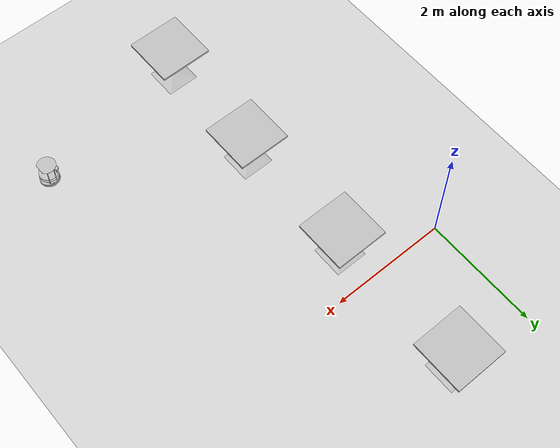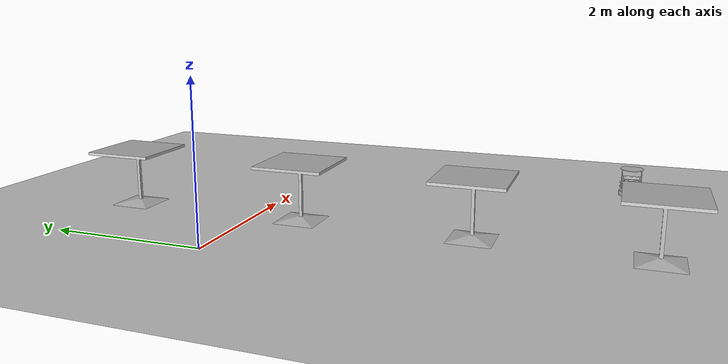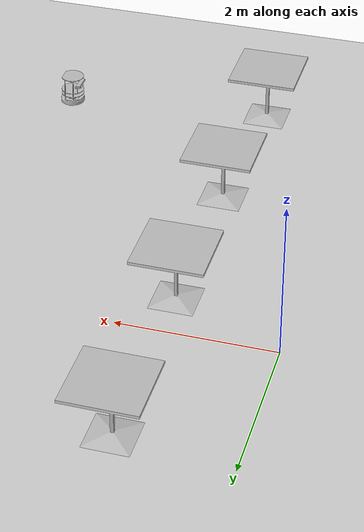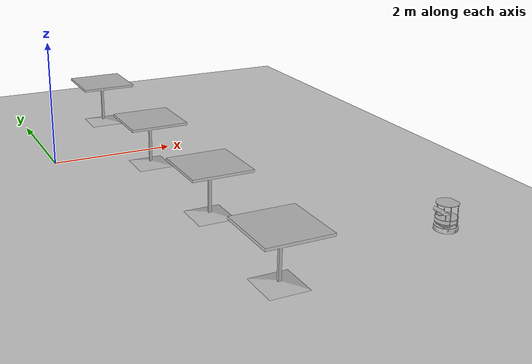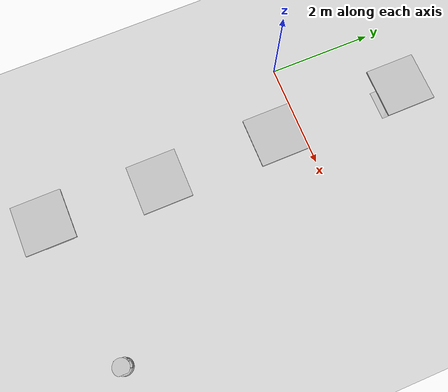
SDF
<sdf version="1.7">
 <world name="default">
  <light name="sun" type="directional">
   <pose>0 0 10 0 -0 0</pose>
   <diffuse>0.8 0.8 0.8 1</diffuse>
   <specular>0.2 0.2 0.2 1</specular>
   <attenuation>
    <range>1000</range>
    <constant>0.9</constant>
    <linear>0.01</linear>
    <quadratic>0.001</quadratic>
   </attenuation>
   <direction>-0.5 0.1 -0.9</direction>
   <spot><inner_angle>0</inner_angle><outer_angle>0</outer_angle><falloff>0</falloff></spot>
  </light>
  <model name="ground_plane">
   <static>1</static>
   <link name="link">
    <collision name="collision">
     <geometry><plane><normal>0 0 1</normal><size>100 100</size></plane></geometry>
     <surface>
      <contact><collide_bitmask>65535</collide_bitmask></contact>
      <friction><ode><mu>100</mu><mu2>50</mu2></ode></friction>
     </surface>
    </collision>
    <visual name="visual">
     <cast_shadows>0</cast_shadows>
     <geometry><plane><normal>0 0 1</normal><size>100 100</size></plane></geometry>
     <material>
      <script><uri>file://media/materials/scripts/gazebo.material</uri><name>Gazebo/Grey</name></script>
     </material>
    </visual>
   </link>
  </model>
  <gravity>0 0 -9.8</gravity>
  <magnetic_field>6e-06 2.3e-05 -4.2e-05</magnetic_field>
  <atmosphere type="adiabatic"/>
  <physics type="ode">
   <max_step_size>0.001</max_step_size>
   <real_time_factor>1</real_time_factor>
   <real_time_update_rate>1000</real_time_update_rate>
  </physics>
  <scene><ambient>0.4 0.4 0.4 1</ambient><background>0.7 0.7 0.7 1</background><shadows>1</shadows></scene>
  <audio><device>default</device></audio>
  <spherical_coordinates>
   <surface_model>EARTH_WGS84</surface_model>
   <latitude_deg>0</latitude_deg>
   <longitude_deg>0</longitude_deg>
   <elevation>0</elevation>
   <heading_deg>0</heading_deg>
  </spherical_coordinates>
  <model name="cafe_table">
   <static>1</static>
   <link name="link">
    <collision name="surface">
     <pose>0 0 0.755 0 -0 0</pose>
     <geometry><box><size>0.913 0.913 0.04</size></box></geometry>
    </collision>
    <collision name="column">
     <pose>0 0 0.37 0 -0 0</pose>
     <geometry><box><size>0.042 0.042 0.74</size></box></geometry>
    </collision>
    <collision name="base">
     <pose>0 0 0.02 0 -0 0</pose>
     <geometry><box><size>0.56 0.56 0.04</size></box></geometry>
    </collision>
    <visual name="visual">
     <geometry><mesh><uri>model://cafe_table/meshes/cafe_table.dae</uri></mesh></geometry>
    </visual>
   </link>
   <pose>1.35328 -4.99927 0 0 -0 0</pose>
  </model>
  <model name="cafe_table_0">
   <static>1</static>
   <link name="link">
    <collision name="surface">
     <pose>0 0 0.755 0 -0 0</pose>
     <geometry><box><size>0.913 0.913 0.04</size></box></geometry>
    </collision>
    <collision name="column">
     <pose>0 0 0.37 0 -0 0</pose>
     <geometry><box><size>0.042 0.042 0.74</size></box></geometry>
    </collision>
    <collision name="base">
     <pose>0 0 0.02 0 -0 0</pose>
     <geometry><box><size>0.56 0.56 0.04</size></box></geometry>
    </collision>
    <visual name="visual">
     <geometry><mesh><uri>model://cafe_table/meshes/cafe_table.dae</uri></mesh></geometry>
    </visual>
   </link>
   <pose>1.43722 -2.88927 0 0 -0 0</pose>
  </model>
  <model name="cafe_table_1">
   <static>1</static>
   <link name="link">
    <collision name="surface">
     <pose>0 0 0.755 0 -0 0</pose>
     <geometry><box><size>0.913 0.913 0.04</size></box></geometry>
    </collision>
    <collision name="column">
     <pose>0 0 0.37 0 -0 0</pose>
     <geometry><box><size>0.042 0.042 0.74</size></box></geometry>
    </collision>
    <collision name="base">
     <pose>0 0 0.02 0 -0 0</pose>
     <geometry><box><size>0.56 0.56 0.04</size></box></geometry>
    </collision>
    <visual name="visual">
     <geometry><mesh><uri>model://cafe_table/meshes/cafe_table.dae</uri></mesh></geometry>
    </visual>
   </link>
   <pose>1.42368 -0.645604 0 0 -0 0</pose>
  </model>
  <model name="cafe_table_2">
   <static>1</static>
   <link name="link">
    <collision name="surface">
     <pose>0 0 0.755 0 -0 0</pose>
     <geometry><box><size>0.913 0.913 0.04</size></box></geometry>
    </collision>
    <collision name="column">
     <pose>0 0 0.37 0 -0 0</pose>
     <geometry><box><size>0.042 0.042 0.74</size></box></geometry>
    </collision>
    <collision name="base">
     <pose>0 0 0.02 0 -0 0</pose>
     <geometry><box><size>0.56 0.56 0.04</size></box></geometry>
    </collision>
    <visual name="visual">
     <geometry><mesh><uri>model://cafe_table/meshes/cafe_table.dae</uri></mesh></geometry>
    </visual>
   </link>
   <pose>1.41888 1.82906 0 0 -0 0</pose>
  </model>
  <model name="turtlebot">
   <link name="rack">
    <inertial>
     <pose>0.001453 -0.000453 0.029787 0 -0 0</pose>
     <inertia>
      <ixx>0.05864</ixx>
      <ixy>0.000124</ixy>
      <ixz>0.000615</ixz>
      <iyy>0.058786</iyy>
      <iyz>1.4e-05</iyz>
      <izz>1.53244</izz>
     </inertia>
     <mass>2.234</mass>
    </inertial>
    <collision name="plate_0_collision">
     <pose>-0.04334 0 0.084757 0 -0 0</pose>
     <geometry><box><size>0.233502 0.314845 0.006401</size></box></geometry>
    </collision>
    <visual name="plate_0_visual">
     <pose>-0.04334 0 0.084757 0 -0 0</pose>
     <geometry><mesh><uri>model://turtlebot/meshes/plate_0_logo.dae</uri></mesh></geometry>
    </visual>
    <collision name="plate_1_collision">
     <pose>-0.00266 0 0.141907 0 -0 0</pose>
     <geometry><box><size>0.314856 0.314856 0.006401</size></box></geometry>
    </collision>
    <visual name="plate_1_visual">
     <pose>-0.00266 0 0.141907 0 -0 0</pose>
     <geometry><mesh><uri>model://turtlebot/meshes/plate_1_logo.dae</uri></mesh></geometry>
    </visual>
    <collision name="plate_2_collision">
     <pose>-0.00266 0 0.199108 0 -0 0</pose>
     <geometry><box><size>0.314856 0.314856 0.006401</size></box></geometry>
    </collision>
    <visual name="plate_2_visual">
     <pose>-0.00266 0 0.199108 0 -0 0</pose>
     <geometry><mesh><uri>model://turtlebot/meshes/plate_1_logo.dae</uri></mesh></geometry>
    </visual>
    <collision name="plate_3_collision">
     <pose>-0.01582 0 0.405457 0 -0 0</pose>
     <geometry><box><size>0.288 0.315 0.006401</size></box></geometry>
    </collision>
    <visual name="plate_3_visual">
     <pose>-0.01582 0 0.405457 0 -0 0</pose>
     <geometry><mesh><uri>model://turtlebot/meshes/plate_2_logo.dae</uri></mesh></geometry>
    </visual>
    <collision name="spacer_0_collision">
     <pose>-0.00254 0.111468 0.079992 0 -0 0</pose>
     <geometry><cylinder><radius>0.0127</radius><length>0.003175</length></cylinder></geometry>
    </collision>
    <visual name="spacer_0_visual">
     <pose>-0.00254 0.111468 0.079992 0 -0 0</pose>
     <geometry><mesh><uri>model://turtlebot/meshes/68-02403-125_Spacer.dae</uri></mesh></geometry>
    </visual>
    <collision name="spacer_1_collision">
     <pose>-0.00254 -0.111468 0.079992 0 -0 0</pose>
     <geometry><cylinder><radius>0.0127</radius><length>0.003175</length></cylinder></geometry>
    </collision>
    <visual name="spacer_1_visual">
     <pose>-0.00254 -0.111468 0.079992 0 -0 0</pose>
     <geometry><mesh><uri>model://turtlebot/meshes/68-02403-125_Spacer.dae</uri></mesh></geometry>
    </visual>
    <collision name="spacer_2_collision">
     <pose>-0.07239 -0.111468 0.079992 0 -0 0</pose>
     <geometry><cylinder><radius>0.0127</radius><length>0.003175</length></cylinder></geometry>
    </collision>
    <visual name="spacer_2_visual">
     <pose>-0.07239 -0.111468 0.079992 0 -0 0</pose>
     <geometry><mesh><uri>model://turtlebot/meshes/68-02403-125_Spacer.dae</uri></mesh></geometry>
    </visual>
    <collision name="spacer_3_collision">
     <pose>-0.07239 0.111468 0.079992 0 -0 0</pose>
     <geometry><cylinder><radius>0.0127</radius><length>0.003175</length></cylinder></geometry>
    </collision>
    <visual name="spacer_3_visual">
     <pose>-0.07239 0.111468 0.079992 0 -0 0</pose>
     <geometry><mesh><uri>model://turtlebot/meshes/68-02403-125_Spacer.dae</uri></mesh></geometry>
    </visual>
    <collision name="standoff_2in_0_collision">
     <pose>0.06764 0.13142 0.08798 0 -0 0</pose>
     <geometry><cylinder><radius>0.0381</radius><length>0.0635</length></cylinder></geometry>
    </collision>
    <visual name="standoff_2in_0_visual">
     <pose>0.06764 0.13142 0.08798 0 -0 0</pose>
     <geometry>
      <mesh><uri>model://turtlebot/meshes/68-04552-2000-RA_Turtlebot_M-F_Standoff.dae</uri></mesh>
     </geometry>
    </visual>
    <collision name="standoff_2in_1_collision">
     <pose>0.06764 -0.13142 0.08798 0 -0 0</pose>
     <geometry><cylinder><radius>0.0381</radius><length>0.0635</length></cylinder></geometry>
    </collision>
    <visual name="standoff_2in_1_visual">
     <pose>0.06764 -0.13142 0.08798 0 -0 0</pose>
     <geometry>
      <mesh><uri>model://turtlebot/meshes/68-04552-2000-RA_Turtlebot_M-F_Standoff.dae</uri></mesh>
     </geometry>
    </visual>
    <collision name="standoff_2in_2_collision">
     <pose>-0.052832 -0.13142 0.08798 0 -0 0</pose>
     <geometry><cylinder><radius>0.0381</radius><length>0.0635</length></cylinder></geometry>
    </collision>
    <visual name="standoff_2in_2_visual">
     <pose>-0.052832 -0.13142 0.08798 0 -0 0</pose>
     <geometry>
      <mesh><uri>model://turtlebot/meshes/68-04552-2000-RA_Turtlebot_M-F_Standoff.dae</uri></mesh>
     </geometry>
    </visual>
    <collision name="standoff_2in_3_collision">
     <pose>-0.052832 0.13142 0.08798 0 -0 0</pose>
     <geometry><cylinder><radius>0.0381</radius><length>0.0635</length></cylinder></geometry>
    </collision>
    <visual name="standoff_2in_3_visual">
     <pose>-0.052832 0.13142 0.08798 0 -0 0</pose>
     <geometry>
      <mesh><uri>model://turtlebot/meshes/68-04552-2000-RA_Turtlebot_M-F_Standoff.dae</uri></mesh>
     </geometry>
    </visual>
    <collision name="standoff_2in_4_collision">
     <pose>0.06764 0.13142 0.14513 0 -0 0</pose>
     <geometry><cylinder><radius>0.0381</radius><length>0.0635</length></cylinder></geometry>
    </collision>
    <visual name="standoff_2in_4_visual">
     <pose>0.06764 0.13142 0.14513 0 -0 0</pose>
     <geometry>
      <mesh><uri>model://turtlebot/meshes/68-04552-2000-RA_Turtlebot_M-F_Standoff.dae</uri></mesh>
     </geometry>
    </visual>
    <collision name="standoff_2in_5_collision">
     <pose>0.06764 -0.13142 0.14513 0 -0 0</pose>
     <geometry><cylinder><radius>0.0381</radius><length>0.0635</length></cylinder></geometry>
    </collision>
    <visual name="standoff_2in_5_visual">
     <pose>0.06764 -0.13142 0.14513 0 -0 0</pose>
     <geometry>
      <mesh><uri>model://turtlebot/meshes/68-04552-2000-RA_Turtlebot_M-F_Standoff.dae</uri></mesh>
     </geometry>
    </visual>
    <collision name="standoff_2in_6_collision">
     <pose>-0.052832 -0.13142 0.14513 0 -0 0</pose>
     <geometry><cylinder><radius>0.0381</radius><length>0.0635</length></cylinder></geometry>
    </collision>
    <visual name="standoff_2in_6_visual">
     <pose>-0.052832 -0.13142 0.14513 0 -0 0</pose>
     <geometry>
      <mesh><uri>model://turtlebot/meshes/68-04552-2000-RA_Turtlebot_M-F_Standoff.dae</uri></mesh>
     </geometry>
    </visual>
    <collision name="standoff_2in_7_collision">
     <pose>-0.052832 0.13142 0.14513 0 -0 0</pose>
     <geometry><cylinder><radius>0.0381</radius><length>0.0635</length></cylinder></geometry>
    </collision>
    <visual name="standoff_2in_7_visual">
     <pose>-0.052832 0.13142 0.14513 0 -0 0</pose>
     <geometry>
      <mesh><uri>model://turtlebot/meshes/68-04552-2000-RA_Turtlebot_M-F_Standoff.dae</uri></mesh>
     </geometry>
    </visual>
    <collision name="standoff_8in_0_collision">
     <pose>0.06764 0.13142 0.20228 0 -0 0</pose>
     <geometry><cylinder><radius>0.011113</radius><length>0.2032</length></cylinder></geometry>
    </collision>
    <visual name="standoff_8in_0_visual">
     <pose>0.06764 0.13142 0.20228 0 -0 0</pose>
     <geometry>
      <mesh><uri>model://turtlebot/meshes/68-02421-8000-RA_Turtlebot_F-F_Standoff.dae</uri></mesh>
     </geometry>
    </visual>
    <collision name="standoff_8in_1_collision">
     <pose>0.06764 -0.13142 0.20228 0 -0 0</pose>
     <geometry><cylinder><radius>0.011113</radius><length>0.2032</length></cylinder></geometry>
    </collision>
    <visual name="standoff_8in_1_visual">
     <pose>0.06764 -0.13142 0.20228 0 -0 0</pose>
     <geometry>
      <mesh><uri>model://turtlebot/meshes/68-02421-8000-RA_Turtlebot_F-F_Standoff.dae</uri></mesh>
     </geometry>
    </visual>
    <collision name="standoff_8in_2_collision">
     <pose>-0.052832 -0.13142 0.20228 0 -0 0</pose>
     <geometry><cylinder><radius>0.011113</radius><length>0.2032</length></cylinder></geometry>
    </collision>
    <visual name="standoff_8in_2_visual">
     <pose>-0.052832 -0.13142 0.20228 0 -0 0</pose>
     <geometry>
      <mesh><uri>model://turtlebot/meshes/68-02421-8000-RA_Turtlebot_F-F_Standoff.dae</uri></mesh>
     </geometry>
    </visual>
    <collision name="standoff_8in_3_collision">
     <pose>-0.052832 0.13142 0.20228 0 -0 0</pose>
     <geometry><cylinder><radius>0.011113</radius><length>0.2032</length></cylinder></geometry>
    </collision>
    <visual name="standoff_8in_3_visual">
     <pose>-0.052832 0.13142 0.20228 0 -0 0</pose>
     <geometry>
      <mesh><uri>model://turtlebot/meshes/68-02421-8000-RA_Turtlebot_F-F_Standoff.dae</uri></mesh>
     </geometry>
    </visual>
    <collision name="standoff_kinect_0_collision">
     <pose>-0.105098 0.098 0.202308 0 -0 0</pose>
     <geometry><cylinder><radius>0.001111</radius><length>0.008585</length></cylinder></geometry>
    </collision>
    <visual name="standoff_kinect_0_visual">
     <pose>-0.105098 0.098 0.202308 0 -0 0</pose>
     <geometry><mesh><uri>model://turtlebot/meshes/68-04556-RA_Kinect_Standoff_Assy.dae</uri></mesh></geometry>
    </visual>
    <collision name="standoff_kinect_1_collision">
     <pose>-0.105098 -0.098 0.202308 0 -0 0</pose>
     <geometry><cylinder><radius>0.001111</radius><length>0.008585</length></cylinder></geometry>
    </collision>
    <visual name="standoff_kinect_1_visual">
     <pose>-0.105098 -0.098 0.202308 0 -0 0</pose>
     <geometry><mesh><uri>model://turtlebot/meshes/68-04556-RA_Kinect_Standoff_Assy.dae</uri></mesh></geometry>
    </visual>
    <sensor name="laser" type="ray">
     <pose>-0.065 0 0.092 0 -0 0</pose>
     <ray>
      <scan>
       <horizontal>
        <samples>180</samples>
        <resolution>1</resolution>
        <min_angle>-2.26893</min_angle>
        <max_angle>2.26893</max_angle>
       </horizontal>
       <vertical><samples>1</samples><min_angle>0</min_angle><max_angle>0</max_angle></vertical>
      </scan>
      <range><min>0.08</min><max>10</max><resolution>0.01</resolution></range>
     </ray>
     <update_rate>20</update_rate>
    </sensor>
   </link>
   <frame name="create::__model__" attached_to="create::base">
    <pose relative_to="__model__">0 0 0 0 -0 0</pose>
   </frame>
   <link name="create::base">
    <inertial>
     <pose>0.001453 -0.000453 0.029787 0 -0 0</pose>
     <inertia>
      <ixx>0.05864</ixx>
      <ixy>0.000124</ixy>
      <ixz>0.000615</ixz>
      <iyy>0.058786</iyy>
      <iyz>1.4e-05</iyz>
      <izz>1.53244</izz>
     </inertia>
     <mass>2.234</mass>
    </inertial>
    <collision name="base_collision">
     <pose>0 0 0.0478 0 -0 0</pose>
     <geometry><cylinder><radius>0.016495</radius><length>0.061163</length></cylinder></geometry>
    </collision>
    <visual name="base_visual">
     <pose>0 0 0.0478 0 -0 0</pose>
     <geometry><mesh><uri>model://create/meshes/create_body.dae</uri></mesh></geometry>
    </visual>
    <collision name="front_wheel_collision">
     <pose>0.13 0 0.017 -0 1.5707 1.5707</pose>
     <geometry><sphere><radius>0.018</radius></sphere></geometry>
     <surface>
      <friction><ode><mu>0</mu><mu2>0</mu2><fdir1>0 0 0</fdir1><slip1>0</slip1><slip2>0</slip2></ode></friction>
     </surface>
    </collision>
    <visual name="front_wheel_visual">
     <pose>0.13 0 0.017 -0 1.5707 1.5707</pose>
     <geometry><sphere><radius>0.009</radius></sphere></geometry>
    </visual>
    <collision name="rear_wheel_collision">
     <pose>-0.13 0 0.017 -0 1.5707 1.5707</pose>
     <geometry><sphere><radius>0.015</radius></sphere></geometry>
     <surface>
      <friction><ode><mu>0</mu><mu2>0</mu2><fdir1>0 0 0</fdir1><slip1>0</slip1><slip2>0</slip2></ode></friction>
     </surface>
    </collision>
    <visual name="rear_wheel_visual">
     <pose>-0.13 0 0.017 -0 1.5707 1.5707</pose>
     <geometry><sphere><radius>0.0075</radius></sphere></geometry>
    </visual>
    <sensor name="left_cliff_sensor" type="ray">
     <pose>0.07 0.14 0.027 0 1.57079 0</pose>
     <ray>
      <scan>
       <horizontal>
        <samples>1</samples>
        <resolution>1</resolution>
        <min_angle>0</min_angle>
        <max_angle>0</max_angle>
       </horizontal>
       <vertical><samples>1</samples><min_angle>0</min_angle><max_angle>0</max_angle></vertical>
      </scan>
      <range><min>0.01</min><max>0.04</max><resolution>0.1</resolution></range>
     </ray>
    </sensor>
    <sensor name="leftfront_cliff_sensor" type="ray">
     <pose>0.15 0.04 0.027 0 1.57079 0</pose>
     <ray>
      <scan>
       <horizontal>
        <samples>1</samples>
        <resolution>1</resolution>
        <min_angle>0</min_angle>
        <max_angle>0</max_angle>
       </horizontal>
       <vertical><samples>1</samples><min_angle>0</min_angle><max_angle>0</max_angle></vertical>
      </scan>
      <range><min>0.01</min><max>0.04</max><resolution>0.1</resolution></range>
     </ray>
    </sensor>
    <sensor name="right_cliff_sensor" type="ray">
     <pose>0.07 -0.14 0.027 0 1.57079 0</pose>
     <ray>
      <scan>
       <horizontal>
        <samples>1</samples>
        <resolution>1</resolution>
        <min_angle>0</min_angle>
        <max_angle>0</max_angle>
       </horizontal>
       <vertical><samples>1</samples><min_angle>0</min_angle><max_angle>0</max_angle></vertical>
      </scan>
      <range><min>0.01</min><max>0.04</max><resolution>0.1</resolution></range>
     </ray>
    </sensor>
    <sensor name="rightfront_cliff_sensor" type="ray">
     <pose>0.15 -0.04 0.027 0 1.57079 0</pose>
     <ray>
      <scan>
       <horizontal>
        <samples>1</samples>
        <resolution>1</resolution>
        <min_angle>0</min_angle>
        <max_angle>0</max_angle>
       </horizontal>
       <vertical><samples>1</samples><min_angle>0</min_angle><max_angle>0</max_angle></vertical>
      </scan>
      <range><min>0.01</min><max>0.04</max><resolution>0.1</resolution></range>
     </ray>
    </sensor>
    <sensor name="wall_sensor" type="ray">
     <pose>0.09 -0.12 0.059 0 0 -1</pose>
     <ray>
      <scan>
       <horizontal>
        <samples>1</samples>
        <resolution>1</resolution>
        <min_angle>0</min_angle>
        <max_angle>0</max_angle>
       </horizontal>
       <vertical><samples>1</samples><min_angle>0</min_angle><max_angle>0</max_angle></vertical>
      </scan>
      <range><min>0.016</min><max>0.04</max><resolution>0.1</resolution></range>
     </ray>
    </sensor>
    <pose relative_to="create::__model__">0 0 0 0 -0 0</pose>
   </link>
   <link name="create::left_wheel">
    <pose relative_to="create::__model__">0 0.13 0.032 0 -0 0</pose>
    <inertial>
     <inertia><ixx>0.001</ixx><ixy>0</ixy><ixz>0</ixz><iyy>0.001</iyy><iyz>0</iyz><izz>0.001</izz></inertia>
     <mass>0.01</mass>
    </inertial>
    <collision name="collision">
     <pose>0 0 0 -0 1.5707 1.5707</pose>
     <geometry><cylinder><radius>0.033</radius><length>0.023</length></cylinder></geometry>
     <surface>
      <friction><ode><mu>10</mu><mu2>10</mu2><fdir1>0 0 0</fdir1><slip1>0</slip1><slip2>0</slip2></ode></friction>
     </surface>
    </collision>
    <visual name="visual">
     <pose>0 0 0 -0 1.5707 1.5707</pose>
     <geometry><cylinder><radius>0.033</radius><length>0.023</length></cylinder></geometry>
    </visual>
   </link>
   <link name="create::right_wheel">
    <pose relative_to="create::__model__">0 -0.13 0.032 0 -0 0</pose>
    <inertial>
     <inertia><ixx>0.001</ixx><ixy>0</ixy><ixz>0</ixz><iyy>0.001</iyy><iyz>0</iyz><izz>0.001</izz></inertia>
     <mass>0.01</mass>
    </inertial>
    <collision name="collision">
     <pose>0 0 0 -0 1.5707 1.5707</pose>
     <geometry><cylinder><radius>0.033</radius><length>0.023</length></cylinder></geometry>
     <surface>
      <friction><ode><mu>10</mu><mu2>10</mu2><fdir1>0 0 0</fdir1><slip1>0</slip1><slip2>0</slip2></ode></friction>
     </surface>
    </collision>
    <visual name="visual">
     <pose>0 0 0 -0 1.5707 1.5707</pose>
     <geometry><cylinder><radius>0.033</radius><length>0.023</length></cylinder></geometry>
    </visual>
   </link>
   <joint name="create::left_wheel" type="revolute">
    <parent>create::base</parent>
    <child>create::left_wheel</child>
    <axis>
     <xyz expressed_in="create::__model__">0 1 0</xyz>
     <limit><lower>-1e+16</lower><upper>1e+16</upper></limit>
     <dynamics><spring_reference>0</spring_reference><spring_stiffness>0</spring_stiffness></dynamics>
    </axis>
   </joint>
   <joint name="create::right_wheel" type="revolute">
    <parent>create::base</parent>
    <child>create::right_wheel</child>
    <axis>
     <xyz expressed_in="create::__model__">0 1 0</xyz>
     <limit><lower>-1e+16</lower><upper>1e+16</upper></limit>
     <dynamics><spring_reference>0</spring_reference><spring_stiffness>0</spring_stiffness></dynamics>
    </axis>
   </joint>
   <frame name="kinect::__model__" attached_to="kinect::link">
    <pose relative_to="__model__">-0.087098 0 0.303857 0 -0 0</pose>
   </frame>
   <link name="kinect::link">
    <inertial>
     <mass>0.1</mass>
     <inertia><ixx>1</ixx><ixy>0</ixy><ixz>0</ixz><iyy>1</iyy><iyz>0</iyz><izz>1</izz></inertia>
    </inertial>
    <collision name="collision"><geometry><box><size>0.073 0.276 0.072</size></box></geometry></collision>
    <visual name="visual"><geometry><mesh><uri>model://kinect/meshes/kinect.dae</uri></mesh></geometry></visual>
    <sensor name="camera" type="depth">
     <update_rate>20</update_rate>
     <camera>
      <horizontal_fov>1.0472</horizontal_fov>
      <image><width>640</width><height>480</height><format>R8G8B8</format></image>
      <clip><near>0.05</near><far>3</far></clip>
     </camera>
    </sensor>
    <pose relative_to="kinect::__model__">0 0 0 0 -0 0</pose>
   </link>
   <joint name="create_rack" type="revolute">
    <parent>create::base</parent>
    <child>rack</child>
    <axis>
     <xyz expressed_in="__model__">0 0 1</xyz>
     <limit><lower>0</lower><upper>0</upper></limit>
     <dynamics><spring_reference>0</spring_reference><spring_stiffness>0</spring_stiffness></dynamics>
    </axis>
   </joint>
   <joint name="kinect_rack" type="revolute">
    <parent>kinect::link</parent>
    <child>rack</child>
    <axis>
     <xyz expressed_in="__model__">0 0 1</xyz>
     <limit><lower>0</lower><upper>0</upper></limit>
     <dynamics><spring_reference>0</spring_reference><spring_stiffness>0</spring_stiffness></dynamics>
    </axis>
   </joint>
   <pose>4.12317 -4.6503 0.000824 -0.000182 -0.020504 -0.000466</pose>
  </model>
 </world>
</sdf>
